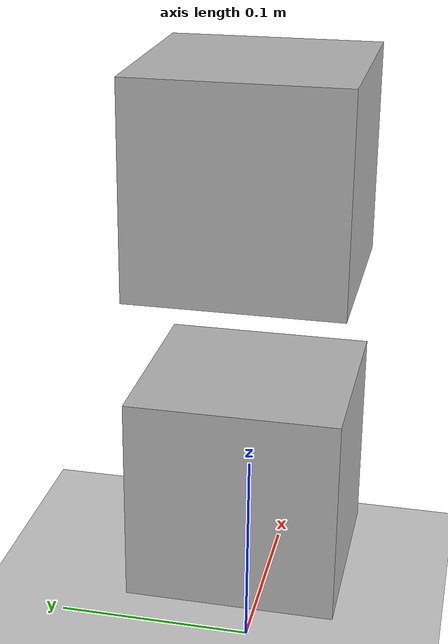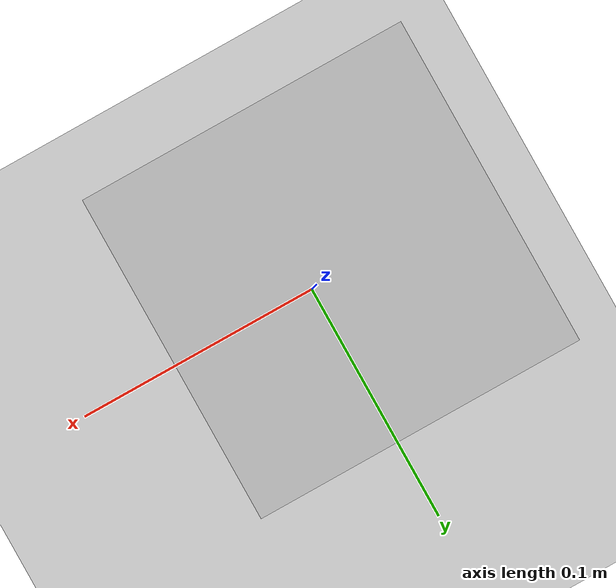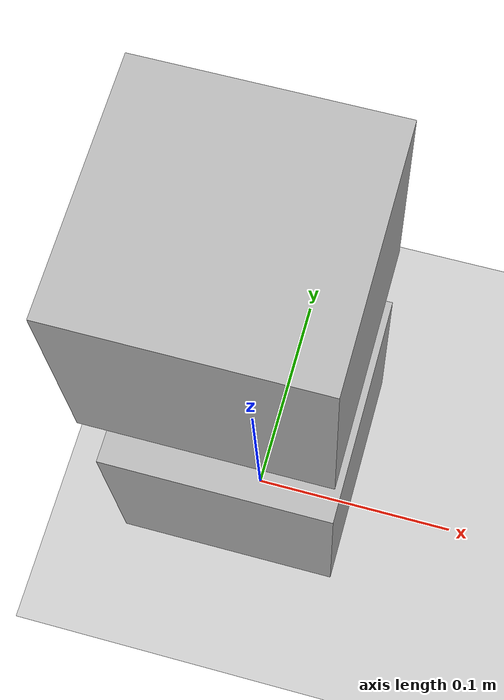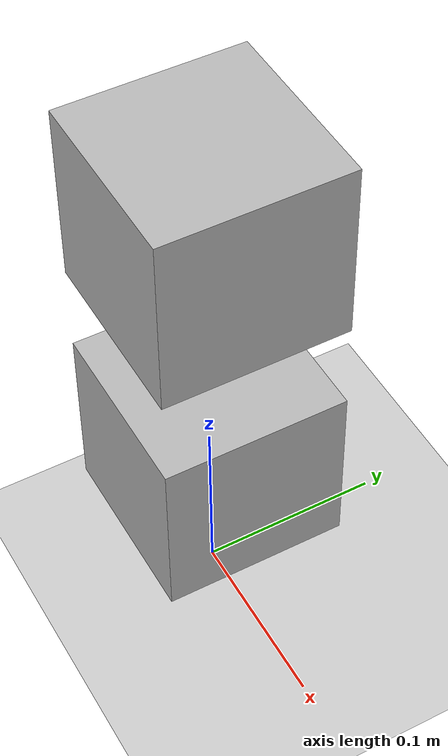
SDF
<?xml version="1.0"?>

<sdf version="1.11">
  <world name="commons_test">
    <physics name="1ms" type="ignored">
      <max_step_size>0.001</max_step_size>
      <real_time_factor>1.0</real_time_factor>
    </physics>
    <plugin
      filename="gz-sim-physics-system"
      name="gz::sim::systems::Physics">
    </plugin>
    <plugin
      filename="gz-sim-user-commands-system"
      name="gz::sim::systems::UserCommands">
    </plugin>
    <plugin
      filename="gz-sim-sensors-system"
      name="gz::sim::systems::Sensors">
    </plugin>
    <plugin
      filename="gz-sim-scene-broadcaster-system"
      name="gz::sim::systems::SceneBroadcaster">
    </plugin>

    <light type="directional" name="sun">
      <cast_shadows>true</cast_shadows>
      <pose>0 0 10 0 0 0</pose>
      <diffuse>0.8 0.8 0.8 1</diffuse>
      <specular>0.2 0.2 0.2 1</specular>
      <attenuation>
        <range>1000</range>
        <constant>0.9</constant>
        <linear>0.01</linear>
        <quadratic>0.001</quadratic>
      </attenuation>
      <direction>-0.5 0.1 -0.9</direction>
    </light>

    <model name="ground_plane">
      <static>true</static>
      <link name="link">
        <collision name="collision">
          <geometry>
            <plane>
              <normal>0 0 1</normal>
              <size>100 100</size>
            </plane>
          </geometry>
        </collision>
        <visual name="visual">
          <geometry>
            <plane>
              <normal>0 0 1</normal>
              <size>100 100</size>
            </plane>
          </geometry>
          <material>
            <ambient>0.8 0.8 0.8 1</ambient>
            <diffuse>0.8 0.8 0.8 1</diffuse>
            <specular>0.8 0.8 0.8 1</specular>
          </material>
        </visual>
      </link>
    </model>

    <model name="model_with_plugins">
      <static>true</static>
      <pose>0 0 0.1 0 0 0</pose>

      <!-- CAMERA PLUGIN-->
      <plugin name="gzyarp::Camera" filename="gz-sim-yarp-camera-system">
        <yarpConfigurationString>(yarpDeviceName camera_plugin_device) (parentLinkName link_1)
          (sensorName camera_sensor) (display_timestamp) (display_time_box)
        </yarpConfigurationString>
      </plugin>

      <!-- LASER PLUGIN-->
      <plugin name="gzyarp::Laser" filename="gz-sim-yarp-laser-system">
        <yarpConfigurationString>
          (yarpDeviceName laser_plugin_device)
          (parentLinkName link_1)
          (sensorName laser_sensor)
          (SENSOR
          (max_distance 5.0)
          (min_distance 0.1)
          (max_angle 360)
          (min_angle 0)
          (resolution 1)
          (allow_infinity 1))
        </yarpConfigurationString>
      </plugin>

      <!-- IMU PLUGIN-->
      <plugin name="gzyarp::Imu" filename="gz-sim-yarp-imu-system">
        <yarpConfigurationString>(yarpDeviceName imu_plugin_device) (parentLinkName link_1)
          (sensorName imu_sensor)
        </yarpConfigurationString>
      </plugin>

      <!-- BASESTATE -->
      <plugin name="gzyarp::BaseState" filename="gz-sim-yarp-basestate-system">
        <yarpConfigurationString>(yarpDeviceName basestate_plugin_device)
          (baseLink link_1)
        </yarpConfigurationString>
      </plugin>

      <!-- FORCE-TORQUE PLUGIN-->
      <plugin name="gzyarp::ForceTorque" filename="gz-sim-yarp-forcetorque-system">
        <yarpConfigurationString>(yarpDeviceName forcetorque_plugin_device) (jointName joint_12)
          (sensorName force_torque_sensor)
        </yarpConfigurationString>
      </plugin>

      <link name="link_1">
        <visual name="visual">
          <geometry>
            <box>
              <size>0.1 0.1 0.1</size>
            </box>
          </geometry>
        </visual>

        <!-- CAMERA SENSOR-->
        <sensor name="camera_sensor" type="camera">
          <camera>
            <horizontal_fov>1.5708</horizontal_fov>
            <image>
              <width>640</width>
              <height>480</height>
            </image>
            <clip>
              <near>0.1</near>
              <far>100</far>
            </clip>
          </camera>
          <always_on>1</always_on>
          <update_rate>30</update_rate>
          <visualize>true</visualize>
        </sensor>

        <!-- LASER -->
        <sensor name="laser_sensor" type="gpu_lidar">
          <lidar> IMPORTANT: Make sure that this values matches specified in laser.ini <scan>
              <horizontal>
                <samples>360</samples>
                <resolution>1</resolution>
                <min_angle>-3.14159</min_angle>
                <max_angle>3.14159</max_angle>
              </horizontal>
            </scan>
            <range>
              <min>0.10</min>
              <max>5.0</max>
              <resolution>0.01</resolution>
            </range>
            <noise>
              <type>gaussian</type>
              <mean>0.0</mean>
              <stddev>0.005</stddev>
            </noise>
          </lidar>
          <always_on>1</always_on>
          <update_rate>30</update_rate>
          <visualize>true</visualize>
        </sensor>

        <!-- IMU -->
        <sensor name="imu_sensor" type="imu">
          <always_on>1</always_on>
          <update_rate>100</update_rate>
          <visualize>true</visualize>
          <enable_metrics>true</enable_metrics>
        </sensor>
      </link>

      <!-- FORCE-TORQUE SENSOR-->
      <joint name="joint_12" type="revolute">
        <parent>link_1</parent>
        <child>link_2</child>
        <sensor name="force_torque_sensor" type="force_torque">
          <always_on>true</always_on>
          <visualize>true</visualize>
          <update_rate>30</update_rate>

        </sensor>
      </joint>

      <link name="link_2">
        <pose>0 0 0.15 0 0 0</pose>
        <inertial>
          <pose>0 0 0.0 0 0 0</pose>
          <inertia>
            <ixx>0.020000</ixx>
            <ixy>0.000000</ixy>
            <ixz>0.000000</ixz>
            <iyy>0.020000</iyy>
            <iyz>0.000000</iyz>
            <izz>0.020000</izz>
          </inertia>
          <mass>10.000000</mass>
        </inertial>
        <visual name="visual_box">
          <pose>0 0 0.0 0 0 0</pose>
          <geometry>
            <box>
              <size>0.1 0.1 0.1</size>
            </box>
          </geometry>
        </visual>
        <collision name="collision_box">
          <pose>0 0 0.0 0 0 0</pose>
          <geometry>
            <box>
              <size>0.1 0.1 0.1</size>
            </box>
          </geometry>
        </collision>
      </link>
    </model>

  </world>
</sdf>
